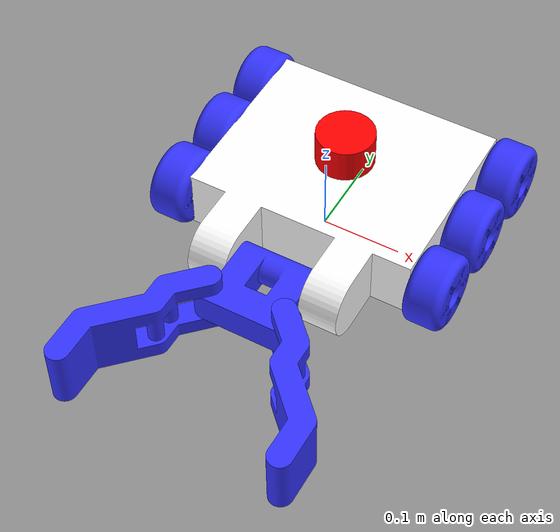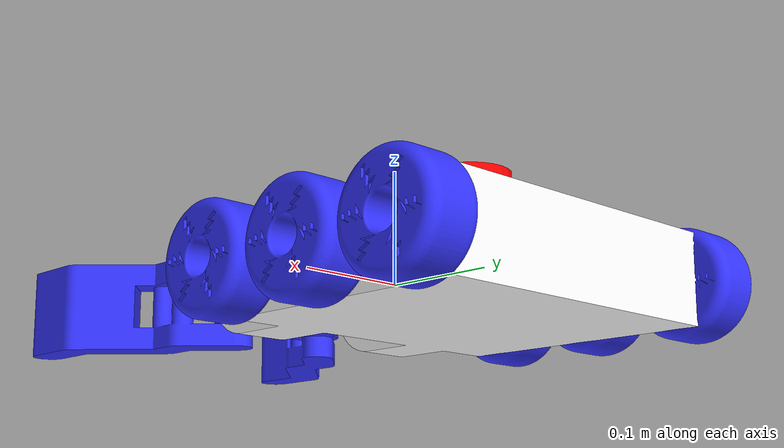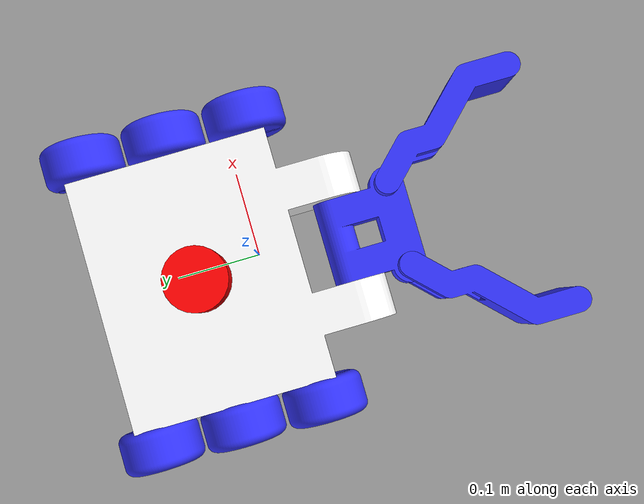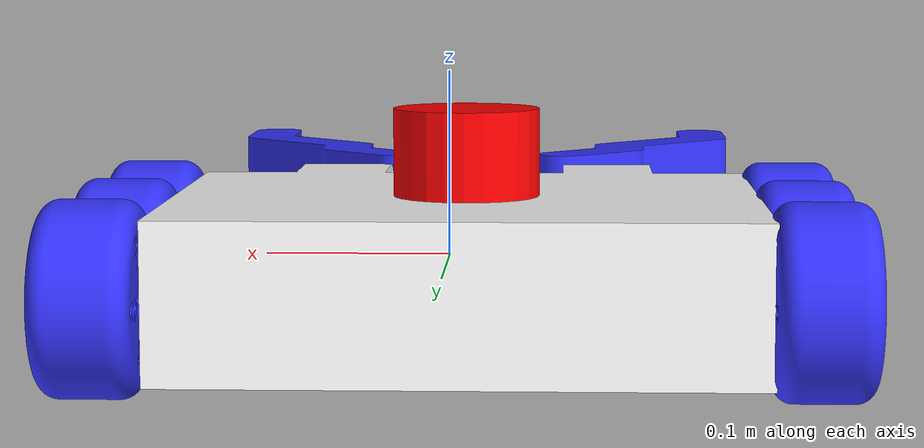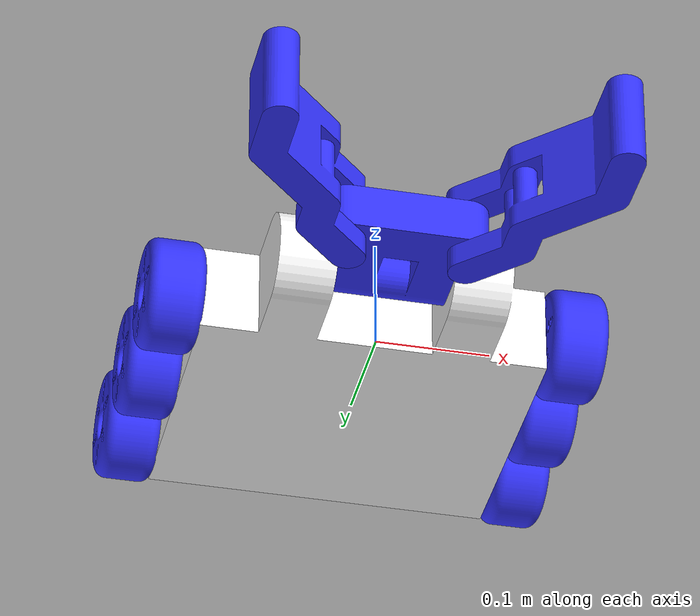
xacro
<?xml version="1.0"?>
<robot xmlns:xacro="http://www.ros.org/wiki/xacro"  name="robot">

    <xacro:include filename="robot_core.xacro" />
    <xacro:include filename="gazebo_control.xacro" />
    <xacro:include filename="lidar.xacro" />
    <xacro:include filename="arm_tr.xacro" />
    <xacro:include filename="gripper_tr.xacro" />

    <ros2_control name="gripper_robot_gazebo_system" type="system">
        <hardware>
            <plugin>gazebo_ros2_control/GazeboSystem</plugin>
        </hardware>
        <xacro:arm_up_down_tr/>
        <xacro:double_arm_left_tr/>
        <xacro:double_arm_right_tr/>
    </ros2_control>
    <xacro:robot_controller/>

</robot>

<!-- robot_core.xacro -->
<robot xmlns:xacro="http://www.ros.org/wiki/xacro" >

    <xacro:include filename="inertial_macros.xacro" />
    <material name="white">
        <color rgba="1 1 1 1" />
    </material>

    <material name="orange">
        <color rgba="1 0.3 0.1 1"/>
    </material>

    <material name="blue">
        <color rgba="0.2 0.2 1 1"/>
    </material>

    <material name="black">
        <color rgba="0 0 0 1"/>
    </material>

    <material name="red">
        <color rgba="1 0 0 1"/>
    </material>

<!-- BASE LINK -->

    <link name="base_link">

    </link>

    <link name="chassis">
        <visual>
            <origin xyz="-0.011763 0.072599 0" rpy="0 0 0"/>
            <geometry>
                <mesh filename="file://$(find articubot_one)/description/cartood.dae" scale="1 1 1"/>
            </geometry>
            <material name="white"/>
        </visual>
        <collision>
            <origin xyz="-0.011763 0.072599 0" rpy="0 0 0"/>
            <geometry>
                <mesh filename="file://$(find articubot_one)/description/cartood.dae" scale="1 1 1"/>
            </geometry>
        </collision>
        <xacro:inertial_box mass="100" x="0" y="0" z="0">
            <origin xyz="0 0 0" rpy="0 0 0"/>
        </xacro:inertial_box>
    </link>
    <gazebo reference="chassis">
        <material>Gazebo/Orange</material>
    </gazebo>

    <joint name="chassis_joint" type="fixed">
        <parent link="base_link"/>
        <child link="chassis"/>
        <origin xyz="0 0 0"/>
    </joint>

<!-- BASE_FOOTPRINT LINK -->

    <joint name="base_footprint_joint" type="fixed">
        <parent link="base_link"/>
        <child link="base_footprint"/>
        <origin xyz="0 0 0" rpy="0 0 0"/>
    </joint>

    <link name="base_footprint">
    </link>

<!-- LEFT MIDDLE WHEEL -->

    <joint name="left_middle_wheel_joint" type="continuous">
        <parent link="base_link"/>
        <child link="left_middle_wheel"/>
        <origin xyz="0.162737 0.072599 0" rpy="0 0 0"/>
        <axis xyz="1 0 0"/>
        <dynamic dim="1" friction="100"/>
    </joint>
    <link name="left_middle_wheel">
        <visual>
            <geometry>
                <mesh filename="file://$(find articubot_one)/description/wheeltood.dae" scale="1 1 1"/>
            </geometry>
            <material name="blue"/>
        </visual>
        <collision>
            <geometry>
                <mesh filename="file://$(find articubot_one)/description/wheeltood.dae" scale="1 1 1"/>
            </geometry>
        </collision>
        <xacro:inertial_cylinder mass="50" length="0.05" radius="0.05">
            <origin xyz="0 0 0" rpy="0 0 0"/>
        </xacro:inertial_cylinder>
    </link>
    <gazebo reference="left_middle_wheel">
        <material>Gazebo/Blue</material>
    </gazebo>

<!--LEFT BACK WHEEL-->

    <joint name="left_back_wheel_joint" type="continuous">
        <parent link="base_link"/>
        <child link="left_back_wheel"/>
        <origin xyz="0.162737 0.172599 0" rpy="0 0 0"/>
        <axis xyz="1 0 0"/>
        <dynamic dim="1" friction="100"/>
    </joint>
    <link name="left_back_wheel">
        <visual>
            <geometry>
                <mesh filename="file://$(find articubot_one)/description/wheeltood.dae" scale="1 1 1"/>
            </geometry>
            <material name="blue"/>
        </visual>
        <collision>
            <geometry>
                <mesh filename="file://$(find articubot_one)/description/wheeltood.dae" scale="1 1 1"/>
            </geometry>
        </collision>
        <xacro:inertial_cylinder mass="50" length="0.05" radius="0.05">
            <origin xyz="0 0 0" rpy="0 0 0"/>
        </xacro:inertial_cylinder>
    </link>
    <gazebo reference="left_back_wheel">
        <material>Gazebo/Blue</material>
        <mu1>0.8</mu1>
    </gazebo>

<!--LEFT FRONT WHEEL-->

    <joint name="left_front_wheel_joint" type="continuous">
        <parent link="base_link"/>
        <child link="left_front_wheel"/>
        <origin xyz="0.162737 -0.027401 0" rpy="0 0 0"/>
        <axis xyz="1 0 0"/>
        <dynamic dim="1" friction="100"/>
    </joint>
    <link name="left_front_wheel">
        <visual>
            <geometry>
                <mesh filename="file://$(find articubot_one)/description/wheeltood.dae" scale="1 1 1"/>
            </geometry>
            <material name="blue"/>
        </visual>
        <collision>
            <geometry>
                <mesh filename="file://$(find articubot_one)/description/wheeltood.dae" scale="1 1 1"/>
            </geometry>
        </collision>
        <xacro:inertial_cylinder mass="50" length="0.05" radius="0.05">
            <origin xyz="0 0 0" rpy="0 0 0"/>
        </xacro:inertial_cylinder>
    </link>
    <gazebo reference="left_front_wheel">
        <material>Gazebo/Blue</material>
    </gazebo>

<!-- RIGHT MIDDLE WHEEL -->

    <joint name="right_middle_wheel_joint" type="continuous">
        <parent link="base_link"/>
        <child link="right_middle_wheel"/>
        <origin xyz="-0.186263 0.072599 0" rpy="0 0 0"/>
        <axis xyz="1 0 0"/>
        <dynamic dim="1" friction="100"/>
    </joint>
    <link name="right_middle_wheel">
        <visual>
            <geometry>
                <mesh filename="file://$(find articubot_one)/description/wheeltood.dae" scale="1 1 1"/>
            </geometry>
            <material name="blue"/>
        </visual>
        <collision>
            <geometry>
                <mesh filename="file://$(find articubot_one)/description/wheeltood.dae" scale="1 1 1"/>
            </geometry>
        </collision>
        <xacro:inertial_cylinder mass="50" length="0.05" radius="0.05">
            <origin xyz="0 0 0" rpy="0 0 0"/>
        </xacro:inertial_cylinder>
    </link>
    <gazebo reference="right_middle_wheel">
        <material>Gazebo/Blue</material>
    </gazebo>

<!-- RIGHT BACK WHEEL -->

    <joint name="right_back_wheel_joint" type="continuous">
        <parent link="base_link"/>
        <child link="right_back_wheel"/>
        <origin xyz="-0.186263 0.172599 0" rpy="0 0 0"/>
        <axis xyz="1 0 0"/>
        <dynamic dim="1" friction="100"/>
    </joint>
    <link name="right_back_wheel">
        <visual>
            <geometry>
                <mesh filename="file://$(find articubot_one)/description/wheeltood.dae" scale="1 1 1"/>
            </geometry>
            <material name="blue"/>
        </visual>
        <collision>
            <geometry>
                <mesh filename="file://$(find articubot_one)/description/wheeltood.dae" scale="1 1 1"/>
            </geometry>
        </collision>
        <xacro:inertial_cylinder mass="50" length="0.05" radius="0.05">
            <origin xyz="0 0 0" rpy="0 0 0"/>
        </xacro:inertial_cylinder>
    </link>
    <gazebo reference="right_back_wheel">
        <material>Gazebo/Blue</material>

    </gazebo>

<!-- RIGHT FRONT WHEEL -->

    <joint name="right_front_wheel_joint" type="continuous">
        <parent link="base_link"/>
        <child link="right_front_wheel"/>
        <origin xyz="-0.186263 -0.027401 0" rpy="0 0 0"/>
        <axis xyz="1 0 0"/>
        <dynamic dim="1" friction="100"/>
    </joint>
    <link name="right_front_wheel">
        <visual>
            <geometry>
                <mesh filename="file://$(find articubot_one)/description/wheeltood.dae" scale="1 1 1"/>
            </geometry>
            <material name="blue"/>
        </visual>
        <collision>
            <geometry>
                <mesh filename="file://$(find articubot_one)/description/wheeltood.dae" scale="1 1 1"/>
            </geometry>
        </collision>
        <xacro:inertial_cylinder mass="25" length="0.05" radius="0.05">
            <origin xyz="0 0 0" rpy="0 0 0"/>
        </xacro:inertial_cylinder>
    </link>
    <gazebo reference="right_front_wheel">
        <material>Gazebo/Blue</material>
    </gazebo>

<!--ARM UP AND DOWN -->

    <joint name="arm_up_down_joint" type="revolute">
        <parent link="chassis"/>
        <child link="first_arm"/>
        <origin xyz="-0.011763 -0.097401 0" rpy="0 0 0"/>
        <axis xyz="-1 0 0"/>
        <limit lower="0.0" upper="0.785" velocity="1" effort="100" />
    </joint>

    <link name="first_arm">
        <visual>
            <geometry>
                <mesh filename="file://$(find articubot_one)/description/joint1.dae" scale="1 1 1"/>
            </geometry>
            <material name="blue"/>
        </visual>
        <collision>
            <geometry>
                <mesh filename="file://$(find articubot_one)/description/joint1.dae" scale="1 1 1"/>
            </geometry>
        </collision>
        <xacro:inertial_box mass="0.1" x="0" y="0" z="0">
            <origin xyz="0 0 0" rpy="0 0 0"/>
        </xacro:inertial_box>
    </link>
    <gazebo reference="first_arm">
        <material>Gazebo/Blue</material>
        <mu1>1.4</mu1>
    </gazebo>

<!--ARM LEFT -->

    <joint name="double_arm_left" type="revolute">
        <parent link="first_arm"/>
        <child link="left_arm"/>
        <origin xyz="0.05 -0.07 0" rpy="-3.05093 1.57079 1.66145"/>
        <axis xyz="1 0 0"/>
        <limit lower="-0.785" upper="0.67" velocity="1" effort="100" />
    </joint>
    <link name="left_arm">
        <visual>
            <geometry>
                <mesh filename="file://$(find articubot_one)/description/arm.dae" scale="1 1 1"/>
            </geometry>
            <material name="blue"/>
        </visual>
        <collision>
            <geometry>
                <mesh filename="file://$(find articubot_one)/description/arm.dae" scale="1 1 1"/>
            </geometry>
        </collision>
        <xacro:inertial_cylinder mass="0.1" length="0" radius="0">
            <origin xyz="0 0 0" rpy="0 0 0"/>
        </xacro:inertial_cylinder>
    </link>
    <gazebo reference="left_arm">
        <material>Gazebo/Blue</material>
    </gazebo>

<!--ARM RIGHT -->

    <joint name="double_arm_right" type="revolute">
        <parent link="first_arm"/>
        <child link="right_arm"/>
        <origin xyz="-0.05 -0.07 0" rpy="-3.05093 -1.57079 -1.66145"/>
        <axis xyz="1 0 0"/>
        <limit lower="-0.785" upper="0.67" velocity="1" effort="100" />
    </joint>
    <link name="right_arm">
        <visual>
            <geometry>
                <mesh filename="file://$(find articubot_one)/description/arm.dae" scale="1 1 1"/>
            </geometry>
            <material name="blue"/>
        </visual>
        <collision>
            <geometry>
                <mesh filename="file://$(find articubot_one)/description/arm.dae" scale="1 1 1"/>
            </geometry>
        </collision>
        <xacro:inertial_cylinder mass="0.1" length="0" radius="0">
            <origin xyz="0 0 0" rpy="0 0 0"/>
        </xacro:inertial_cylinder>
    </link>
    <gazebo reference="right_arm">
        <material>Gazebo/Blue</material>
    </gazebo>

</robot>

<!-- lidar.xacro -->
<robot xmlns:xacro="http://www.ros.org/wiki/xacro" >

    <joint name="laser_joint" type="fixed">
        <parent link="chassis"/>
        <child link="laser_frame"/>
        <origin xyz="-0.011763 0.072599 0.06" rpy="0 0 0"/>
    </joint>

    <link name="laser_frame">
        <visual>
            <geometry>
                <cylinder radius="0.0375" length="0.05"/>
            </geometry>
            <material name="red"/>
        </visual>
        <collision>
            <geometry>
                <cylinder radius="0.0375" length="0.05"/>
            </geometry>
        </collision>
        <xacro:inertial_cylinder mass="0" length="0.05" radius="0.0375">
            <origin xyz="0 0 0" rpy="0 0 0"/>
        </xacro:inertial_cylinder>
    </link>

    <gazebo reference="laser_frame">
        <material>Gazebo/Red</material>

        <sensor name="laser" type="ray">
            <pose> 0 0 0 0 0 0 </pose>
            <visualize>true</visualize>
            <update_rate>10</update_rate>
            <ray>
                <scan>
                    <horizontal>
                        <samples>360</samples>
                        <min_angle>-3.14</min_angle>
                        <max_angle>3.14</max_angle>
                    </horizontal>
                </scan>
                <range>
                    <min>0.15</min>
                    <max>12</max>
                </range>
            </ray>

            <plugin name="laser_controller" filename="libgazebo_ros_ray_sensor.so">
                <ros>
                    <argument>~/out:=scan</argument>
                </ros>
                <output_type>sensor_msgs/LaserScan</output_type>
                <frame_name>laser_frame</frame_name>
            </plugin>
        </sensor>
    </gazebo>

</robot>
